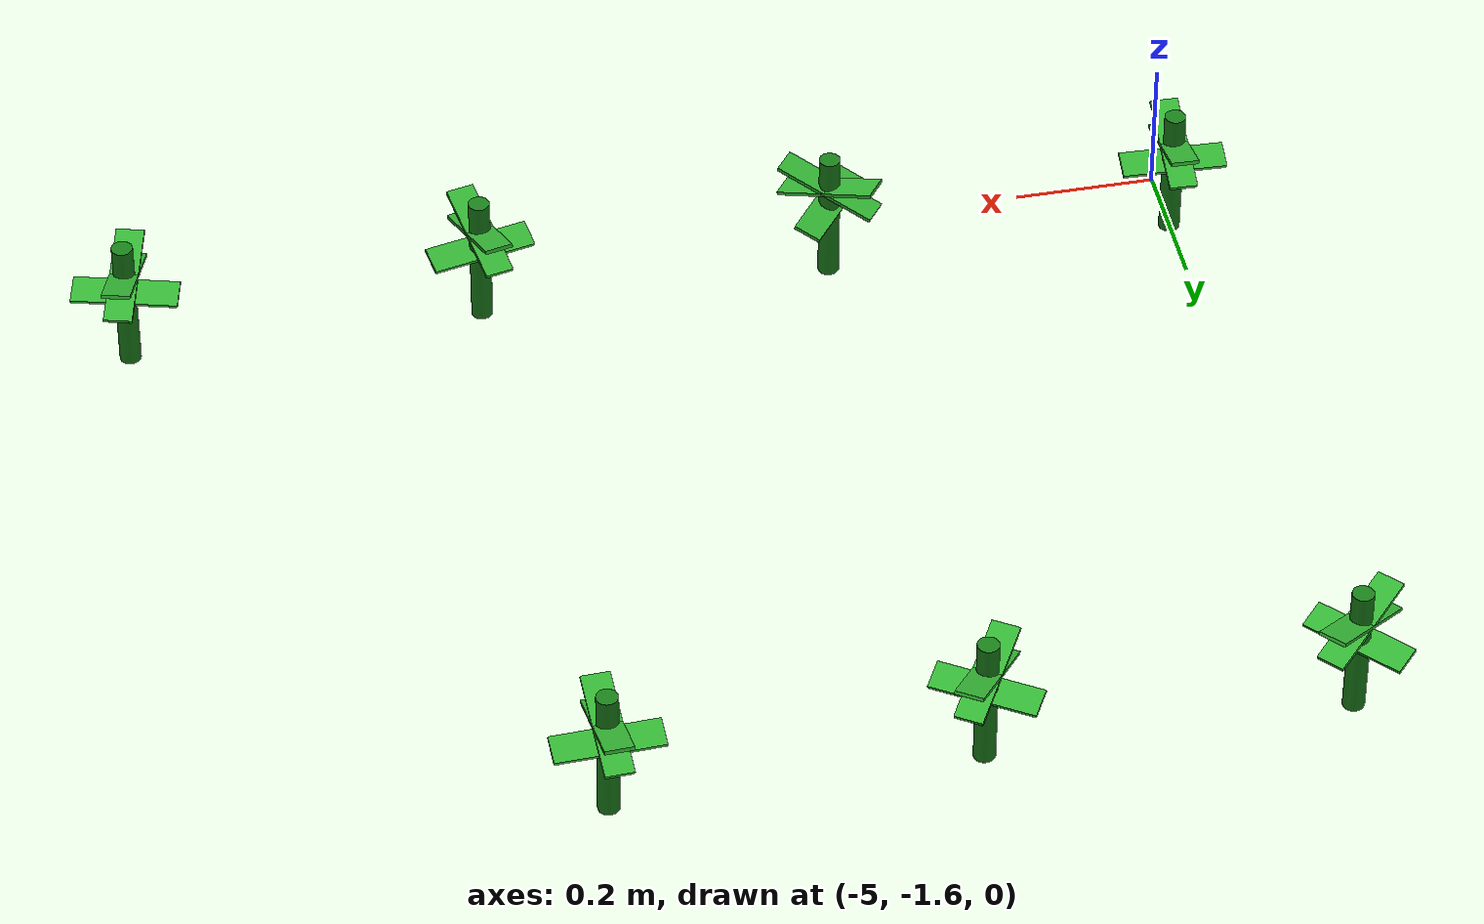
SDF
<sdf version="1.6">
 <world name="farm_world">
  <include><uri>model://sun</uri></include>
  <model name="plant_0">
   <pose>-5.0 -1.5 0 0 0 1.5404168390073285</pose>
   <static>true</static>
   <link name="link">
    <visual name="stem">
     <pose>0 0 0.1 0 0 0</pose>
     <geometry><cylinder><radius>0.015</radius><length>0.2</length></cylinder></geometry>
     <material><ambient>0.1 0.5 0.1 1</ambient><diffuse>0.1 0.5 0.1 1</diffuse></material>
    </visual>
    <visual name="leaf_1">
     <pose>0 0 0.15 0 0.3 0</pose>
     <geometry><box><size>0.15 0.04 0.005</size></box></geometry>
     <material><ambient>0.2 0.7 0.2 1</ambient><diffuse>0.2 0.7 0.2 1</diffuse></material>
    </visual>
    <visual name="leaf_2">
     <pose>0 0 0.15 0 -0.3 0</pose>
     <geometry><box><size>0.15 0.04 0.005</size></box></geometry>
     <material><ambient>0.2 0.7 0.2 1</ambient><diffuse>0.2 0.7 0.2 1</diffuse></material>
    </visual>
    <visual name="leaf_3">
     <pose>0 0 0.12 0.3 0 1.57</pose>
     <geometry><box><size>0.15 0.04 0.005</size></box></geometry>
     <material><ambient>0.2 0.7 0.2 1</ambient><diffuse>0.2 0.7 0.2 1</diffuse></material>
    </visual>
    <collision name="collision">
     <pose>0 0 0.1 0 0 0</pose>
     <geometry><cylinder><radius>0.05</radius><length>0.2</length></cylinder></geometry>
    </collision>
   </link>
  </model>
  <model name="plant_1">
   <pose>-5.0 -0.5 0 0 0 0.7351453791681434</pose>
   <static>true</static>
   <link name="link">
    <visual name="stem">
     <pose>0 0 0.1 0 0 0</pose>
     <geometry><cylinder><radius>0.015</radius><length>0.2</length></cylinder></geometry>
     <material><ambient>0.1 0.5 0.1 1</ambient><diffuse>0.1 0.5 0.1 1</diffuse></material>
    </visual>
    <visual name="leaf_1">
     <pose>0 0 0.15 0 0.3 0</pose>
     <geometry><box><size>0.15 0.04 0.005</size></box></geometry>
     <material><ambient>0.2 0.7 0.2 1</ambient><diffuse>0.2 0.7 0.2 1</diffuse></material>
    </visual>
    <visual name="leaf_2">
     <pose>0 0 0.15 0 -0.3 0</pose>
     <geometry><box><size>0.15 0.04 0.005</size></box></geometry>
     <material><ambient>0.2 0.7 0.2 1</ambient><diffuse>0.2 0.7 0.2 1</diffuse></material>
    </visual>
    <visual name="leaf_3">
     <pose>0 0 0.12 0.3 0 1.57</pose>
     <geometry><box><size>0.15 0.04 0.005</size></box></geometry>
     <material><ambient>0.2 0.7 0.2 1</ambient><diffuse>0.2 0.7 0.2 1</diffuse></material>
    </visual>
    <collision name="collision">
     <pose>0 0 0.1 0 0 0</pose>
     <geometry><cylinder><radius>0.05</radius><length>0.2</length></cylinder></geometry>
    </collision>
   </link>
  </model>
  <model name="plant_4">
   <pose>-4.5 -1.5 0 0 0 2.505541312539062</pose>
   <static>true</static>
   <link name="link">
    <visual name="stem">
     <pose>0 0 0.1 0 0 0</pose>
     <geometry><cylinder><radius>0.015</radius><length>0.2</length></cylinder></geometry>
     <material><ambient>0.1 0.5 0.1 1</ambient><diffuse>0.1 0.5 0.1 1</diffuse></material>
    </visual>
    <visual name="leaf_1">
     <pose>0 0 0.15 0 0.3 0</pose>
     <geometry><box><size>0.15 0.04 0.005</size></box></geometry>
     <material><ambient>0.2 0.7 0.2 1</ambient><diffuse>0.2 0.7 0.2 1</diffuse></material>
    </visual>
    <visual name="leaf_2">
     <pose>0 0 0.15 0 -0.3 0</pose>
     <geometry><box><size>0.15 0.04 0.005</size></box></geometry>
     <material><ambient>0.2 0.7 0.2 1</ambient><diffuse>0.2 0.7 0.2 1</diffuse></material>
    </visual>
    <visual name="leaf_3">
     <pose>0 0 0.12 0.3 0 1.57</pose>
     <geometry><box><size>0.15 0.04 0.005</size></box></geometry>
     <material><ambient>0.2 0.7 0.2 1</ambient><diffuse>0.2 0.7 0.2 1</diffuse></material>
    </visual>
    <collision name="collision">
     <pose>0 0 0.1 0 0 0</pose>
     <geometry><cylinder><radius>0.05</radius><length>0.2</length></cylinder></geometry>
    </collision>
   </link>
  </model>
  <model name="plant_5">
   <pose>-4.5 -0.5 0 0 0 1.0031131464619787</pose>
   <static>true</static>
   <link name="link">
    <visual name="stem">
     <pose>0 0 0.1 0 0 0</pose>
     <geometry><cylinder><radius>0.015</radius><length>0.2</length></cylinder></geometry>
     <material><ambient>0.1 0.5 0.1 1</ambient><diffuse>0.1 0.5 0.1 1</diffuse></material>
    </visual>
    <visual name="leaf_1">
     <pose>0 0 0.15 0 0.3 0</pose>
     <geometry><box><size>0.15 0.04 0.005</size></box></geometry>
     <material><ambient>0.2 0.7 0.2 1</ambient><diffuse>0.2 0.7 0.2 1</diffuse></material>
    </visual>
    <visual name="leaf_2">
     <pose>0 0 0.15 0 -0.3 0</pose>
     <geometry><box><size>0.15 0.04 0.005</size></box></geometry>
     <material><ambient>0.2 0.7 0.2 1</ambient><diffuse>0.2 0.7 0.2 1</diffuse></material>
    </visual>
    <visual name="leaf_3">
     <pose>0 0 0.12 0.3 0 1.57</pose>
     <geometry><box><size>0.15 0.04 0.005</size></box></geometry>
     <material><ambient>0.2 0.7 0.2 1</ambient><diffuse>0.2 0.7 0.2 1</diffuse></material>
    </visual>
    <collision name="collision">
     <pose>0 0 0.1 0 0 0</pose>
     <geometry><cylinder><radius>0.05</radius><length>0.2</length></cylinder></geometry>
    </collision>
   </link>
  </model>
  <model name="plant_8">
   <pose>-4.0 -1.5 0 0 0 1.8031981682654712</pose>
   <static>true</static>
   <link name="link">
    <visual name="stem">
     <pose>0 0 0.1 0 0 0</pose>
     <geometry><cylinder><radius>0.015</radius><length>0.2</length></cylinder></geometry>
     <material><ambient>0.1 0.5 0.1 1</ambient><diffuse>0.1 0.5 0.1 1</diffuse></material>
    </visual>
    <visual name="leaf_1">
     <pose>0 0 0.15 0 0.3 0</pose>
     <geometry><box><size>0.15 0.04 0.005</size></box></geometry>
     <material><ambient>0.2 0.7 0.2 1</ambient><diffuse>0.2 0.7 0.2 1</diffuse></material>
    </visual>
    <visual name="leaf_2">
     <pose>0 0 0.15 0 -0.3 0</pose>
     <geometry><box><size>0.15 0.04 0.005</size></box></geometry>
     <material><ambient>0.2 0.7 0.2 1</ambient><diffuse>0.2 0.7 0.2 1</diffuse></material>
    </visual>
    <visual name="leaf_3">
     <pose>0 0 0.12 0.3 0 1.57</pose>
     <geometry><box><size>0.15 0.04 0.005</size></box></geometry>
     <material><ambient>0.2 0.7 0.2 1</ambient><diffuse>0.2 0.7 0.2 1</diffuse></material>
    </visual>
    <collision name="collision">
     <pose>0 0 0.1 0 0 0</pose>
     <geometry><cylinder><radius>0.05</radius><length>0.2</length></cylinder></geometry>
    </collision>
   </link>
  </model>
  <model name="plant_9">
   <pose>-4.0 -0.5 0 0 0 1.6151997988479085</pose>
   <static>true</static>
   <link name="link">
    <visual name="stem">
     <pose>0 0 0.1 0 0 0</pose>
     <geometry><cylinder><radius>0.015</radius><length>0.2</length></cylinder></geometry>
     <material><ambient>0.1 0.5 0.1 1</ambient><diffuse>0.1 0.5 0.1 1</diffuse></material>
    </visual>
    <visual name="leaf_1">
     <pose>0 0 0.15 0 0.3 0</pose>
     <geometry><box><size>0.15 0.04 0.005</size></box></geometry>
     <material><ambient>0.2 0.7 0.2 1</ambient><diffuse>0.2 0.7 0.2 1</diffuse></material>
    </visual>
    <visual name="leaf_2">
     <pose>0 0 0.15 0 -0.3 0</pose>
     <geometry><box><size>0.15 0.04 0.005</size></box></geometry>
     <material><ambient>0.2 0.7 0.2 1</ambient><diffuse>0.2 0.7 0.2 1</diffuse></material>
    </visual>
    <visual name="leaf_3">
     <pose>0 0 0.12 0.3 0 1.57</pose>
     <geometry><box><size>0.15 0.04 0.005</size></box></geometry>
     <material><ambient>0.2 0.7 0.2 1</ambient><diffuse>0.2 0.7 0.2 1</diffuse></material>
    </visual>
    <collision name="collision">
     <pose>0 0 0.1 0 0 0</pose>
     <geometry><cylinder><radius>0.05</radius><length>0.2</length></cylinder></geometry>
    </collision>
   </link>
  </model>
  <model name="plant_12">
   <pose>-3.5 -1.5 0 0 0 1.3043515372291121</pose>
   <static>true</static>
   <link name="link">
    <visual name="stem">
     <pose>0 0 0.1 0 0 0</pose>
     <geometry><cylinder><radius>0.015</radius><length>0.2</length></cylinder></geometry>
     <material><ambient>0.1 0.5 0.1 1</ambient><diffuse>0.1 0.5 0.1 1</diffuse></material>
    </visual>
    <visual name="leaf_1">
     <pose>0 0 0.15 0 0.3 0</pose>
     <geometry><box><size>0.15 0.04 0.005</size></box></geometry>
     <material><ambient>0.2 0.7 0.2 1</ambient><diffuse>0.2 0.7 0.2 1</diffuse></material>
    </visual>
    <visual name="leaf_2">
     <pose>0 0 0.15 0 -0.3 0</pose>
     <geometry><box><size>0.15 0.04 0.005</size></box></geometry>
     <material><ambient>0.2 0.7 0.2 1</ambient><diffuse>0.2 0.7 0.2 1</diffuse></material>
    </visual>
    <visual name="leaf_3">
     <pose>0 0 0.12 0.3 0 1.57</pose>
     <geometry><box><size>0.15 0.04 0.005</size></box></geometry>
     <material><ambient>0.2 0.7 0.2 1</ambient><diffuse>0.2 0.7 0.2 1</diffuse></material>
    </visual>
    <collision name="collision">
     <pose>0 0 0.1 0 0 0</pose>
     <geometry><cylinder><radius>0.05</radius><length>0.2</length></cylinder></geometry>
    </collision>
   </link>
  </model>
 </world>
</sdf>
